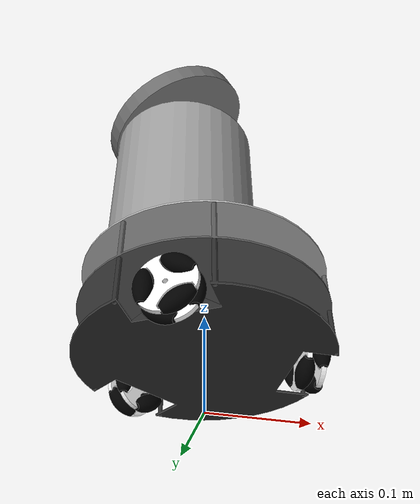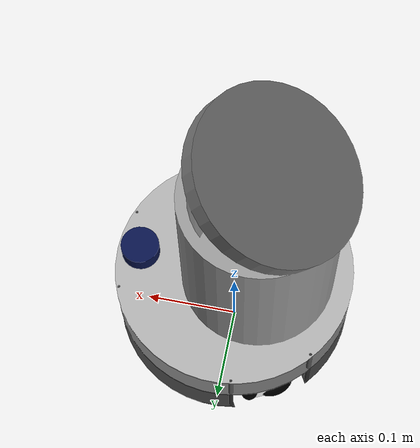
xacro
<?xml version="1.0"?>
<robot name="smartbin_robot" xmlns:xacro="http://ros.org/wiki/xacro">

  <!-- 1. Include the physical body and wheels -->
  <xacro:include filename="$(find smartbin_robot)/urdf/base_link.urdf.xacro" />

  <!-- 2. Include the motors and plugins (cmd_vel logic) -->
  <xacro:include filename="$(find smartbin_robot)/urdf/gazebo_plugins.urdf.xacro" />
  <xacro:include filename="$(find smartbin_robot)/urdf/ros2_control.urdf.xacro" />

  <!-- 3. Include the Sensors (Lidar, Camera, IMU) -->
  <xacro:include filename="$(find smartbin_robot)/urdf/lidar.urdf.xacro" />
  <xacro:include filename="$(find smartbin_robot)/urdf/camera.urdf.xacro" />
  <xacro:include filename="$(find smartbin_robot)/urdf/imu.urdf.xacro" />

  <!-- 4. Initialize the robot structure -->
  <link name="base_footprint" />

  <xacro:base_link parent="base_footprint" xyz="0 0 0.0500" rpy="0 0 0" />

</robot>

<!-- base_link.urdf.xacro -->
<robot xmlns:xacro="http://ros.org/wiki/xacro">

  <!-- Include the wheel definition -->
  <xacro:include filename="$(find smartbin_robot)/urdf/omni_wheel.urdf.xacro"/>

  <xacro:macro name="base_link" params="parent xyz rpy">
    <link name="base_link">
      <visual>
        <geometry>
          <mesh filename="package://smartbin_robot/meshes/base_link.dae" />
        </geometry>
      </visual>
      <collision>
        <geometry>
          <mesh filename="package://smartbin_robot/meshes/base_link.stl" />
        </geometry>
      </collision>
      <inertial>
        <mass value="3.0" />
        <inertia
          ixx="0.02" ixy="0.0" ixz="0.0"
          iyy="0.02" iyz="0.0"
          izz="0.04"/>
      </inertial>
    </link>

    <joint name="base_joint" type="fixed">
      <parent link="${parent}" />
      <child link="base_link" />
      <origin xyz="${xyz}" rpy="${rpy}" />
    </joint>

    <!-- Trash Can Link -->
    <link name="trashcan_link">
      <visual>
      <origin xyz="0 0 -0.15" rpy="1.5708 0 1.5708" />
        <geometry>
          <mesh filename="package://smartbin_robot/meshes/Rubbish_Bin_By_Berken.dae" scale="0.13 0.13 0.13"/>
        </geometry>
      </visual>
      <inertial>
        <mass value="1.0" />
        <inertia ixx="0.02" ixy="0.0" ixz="0.0" iyy="0.02" iyz="0.0" izz="0.01"/>
      </inertial>
    </link>

    <joint name="trashcan_joint" type="fixed">
      <parent link="base_link"/>
      <child link="trashcan_link"/>
      <origin xyz="-0.025 0 0.24" rpy="0 0 0"/>
    </joint>

    <!-- Omni Wheels -->
    <xacro:omni_wheel parent="base_link" suffix="1" xyz="0.0927 0.0000 0.0145" rpy="-0.8040 1.5708 -0.8040"/>
    <xacro:omni_wheel parent="base_link" suffix="2" xyz="-0.0464 0.0803 0.0145" rpy="-0.8040 1.5708 1.290"/>
    <xacro:omni_wheel parent="base_link" suffix="3" xyz="-0.0464 -0.0803 0.0145" rpy="-0.8040 1.5708 -2.8984"/>

    <!-- Sensors -->
    <xacro:camera parent="base_link" suffix="1" xyz="0.1035 -0.0000 0.0630" rpy="0 0 0"/>
    <xacro:lidar parent="base_link" suffix="1" xyz="0.1000 0.0000 0.1000" rpy="0 0 0"/>
    <xacro:imu parent="base_link" suffix="1" xyz="0 0 0" rpy="0 0 0"/>
  </xacro:macro>
</robot>

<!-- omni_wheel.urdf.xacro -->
<robot xmlns:xacro="http://ros.org/wiki/xacro">
  <xacro:include filename="$(find smartbin_robot)/urdf/roller.urdf.xacro"/>

  <xacro:macro name="omni_wheel" params="suffix parent xyz rpy">
    <link name="omni_wheel_link_${suffix}">
      <visual>
        <geometry>
          <mesh filename="package://smartbin_robot/meshes/omni_frame.stl" />
        </geometry>
        <material name="white">
          <color rgba="1 1 1 1" />
        </material>
      </visual>
      <collision>
        <origin xyz="0 0 0" rpy="0 0 0"/>
        <geometry>
          <cylinder radius="0.03" length="0.015"/>
        </geometry>
      </collision>
      <inertial>
        <mass value="0.5" />
        <inertia ixx="0.005" ixy="0" ixz="0" iyy="0.005" iyz="0" izz="0.005" />
      </inertial>
    </link>

    <joint name="omni_wheel_joint_${suffix}" type="continuous">
      <parent link="${parent}" />
      <child link="omni_wheel_link_${suffix}" />
      <origin xyz="${xyz}" rpy="${rpy}" />
      <axis xyz="0 0 -1"/>
    </joint>

    <!-- Roller attachments: These define the physical rollers on the wheel hub -->
    <xacro:roller parent="omni_wheel_link_${suffix}" suffix="${suffix}1" xyz="0.0000 -0.0210 0.0175" rpy="-1.570796327 -0.000000000 -1.570796327"/>
    <xacro:roller parent="omni_wheel_link_${suffix}" suffix="${suffix}2" xyz="0.0182 0.0105 0.01755" rpy="-1.570796327 0.000000000 0.523598776"/>
    <xacro:roller parent="omni_wheel_link_${suffix}" suffix="${suffix}3" xyz="-0.0182 0.0105 0.0175" rpy="-1.570796327 -0.000000000 2.617993878"/>
    <xacro:roller parent="omni_wheel_link_${suffix}" suffix="${suffix}4" xyz="-0.0182 -0.0105 0.0025" rpy="-1.570796327 -0.000000000 -2.617993878"/>
    <xacro:roller parent="omni_wheel_link_${suffix}" suffix="${suffix}5" xyz="0.0182 -0.0105 0.0025" rpy="-1.570796327 -0.000000000 -0.523598776"/>
    <xacro:roller parent="omni_wheel_link_${suffix}" suffix="${suffix}6" xyz="-0.0000 0.0210 0.0025" rpy="1.570796327 0.000000000 -1.570796327"/>
  </xacro:macro>
</robot>

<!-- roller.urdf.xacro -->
<robot xmlns:xacro="http://ros.org/wiki/xacro">
  <xacro:macro name="roller" params="suffix parent xyz rpy">
    <link name="roller_link_${suffix}">
      <visual>
        <geometry>
          <mesh filename="package://smartbin_robot/meshes/roller.stl" />
        </geometry>
        <material name="black">
          <color rgba="0 0 0 1" />
        </material>
      </visual>
      <collision>
        <geometry>
          <mesh filename="package://smartbin_robot/meshes/roller.stl" />
        </geometry>
      </collision>
      <inertial>
        <mass value="0.009" />
        <inertia ixx="1e-6" ixy="0" ixz="0" iyy="1e-6" iyz="0" izz="1e-6" />
      </inertial>
    </link>

    <joint name="roller_joint_${suffix}" type="continuous">
      <parent link="${parent}" />
      <child link="roller_link_${suffix}" />
      <origin xyz="${xyz}" rpy="${rpy}" />
      <axis xyz="0 0 1" />
    </joint>

    <gazebo reference="roller_link_${suffix}">
      <selfCollide>true</selfCollide>
      <collision>
        <surface>
          <friction>
            <ode>
              <mu>1.0</mu>
              <mu2>1.0</mu2>
            </ode>
          </friction>
        </surface>
      </collision>
    </gazebo>
  </xacro:macro>
</robot>

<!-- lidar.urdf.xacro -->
<robot xmlns:xacro="http://ros.org/wiki/xacro">
  <xacro:macro name="lidar" params="suffix parent xyz rpy">
    <link name="lidar_link_${suffix}">
      <visual>
        <geometry>
          <cylinder radius="0.02" length="0.02" />
        </geometry>
        <material name="blue">
          <color rgba="0.03 0.075 0.3 1" />
        </material>
      </visual>
    </link>

    <joint name="lidar_joint_${suffix}" type="fixed">
      <parent link="${parent}" />
      <child link="lidar_link_${suffix}" />
      <origin xyz="${xyz}" rpy="${rpy}" />
      <axis xyz="0 0 1" />
    </joint>

     <gazebo reference="lidar_link_${suffix}">
      <sensor name='gpu_lidar' type='gpu_lidar'>
        <topic>/scan</topic>
        <update_rate>10</update_rate> <!-- Increased update rate -->
        <gz_frame_id>lidar_link_${suffix}</gz_frame_id>
        <ray>
          <scan>
            <horizontal>
              <samples>180</samples>
              <resolution>1</resolution>
              <!-- Range: -pi/2 (-90 deg, right side) to +pi/2 (+90 deg, left side) -->
              <min_angle>-1.5707963</min_angle>
              <max_angle>1.5707963</max_angle>
            </horizontal>
          </scan>
          <range>
            <min>0.08</min>
            <max>10.0</max>
            <resolution>0.01</resolution>
          </range>
          <noise>
            <type>gaussian</type>
            <mean>0.0</mean>
            <stddev>0.01</stddev>
          </noise>
        </ray>
        <always_on>true</always_on>
        <visualize>true</visualize> <!-- Makes the blue laser rays visible in Gazebo! -->
      </sensor>
    </gazebo>
  </xacro:macro>
</robot>

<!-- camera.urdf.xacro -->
<robot xmlns:xacro="http://ros.org/wiki/xacro">
  <xacro:macro name="camera" params="suffix parent xyz rpy">
    <link name="camera_link_${suffix}">
      <visual>
        <geometry>
          <mesh filename="package://smartbin_robot/meshes/camera.stl" />
        </geometry>
        <material name="black">
          <color rgba="0 0 0 1" />
        </material>
      </visual>
      <collision>
        <geometry>
          <mesh filename="package://smartbin_robot/meshes/camera.stl" />
        </geometry>
      </collision>
      <inertial>
        <mass value="0.5" />
        <inertia ixx="0.005" ixy="0" ixz="0" iyy="0.005" iyz="0" izz="0.005" />
      </inertial>
    </link>

    <joint name="camera_joint_${suffix}" type="fixed">
      <parent link="${parent}" />
      <child link="camera_link_${suffix}" />
      <origin xyz="${xyz}" rpy="${rpy}" />
      <axis xyz="0 0 1"/>
    </joint>

    <gazebo reference="camera_link_${suffix}">
      <!-- Depth Sensor -->
      <sensor type="depth" name="depth_camera_${suffix}">
        <gz_frame_id>camera_link_${suffix}</gz_frame_id>
        <pose>-0.005 0 0 0 0 0</pose>
        <topic>depth</topic>
        <update_rate>10.0</update_rate>
        <camera name="depth_camera_internal_${suffix}">
          <camera_info_topic>depth/camera_info</camera_info_topic>
          <pose>0 0 0 0 0 0</pose>
          <horizontal_fov>1.5</horizontal_fov>
          <image>
            <width>320</width>
            <height>240</height>
          </image>
          <clip>
            <near>0.05</near>
            <far>300</far>
          </clip>
          <noise>
            <type>gaussian</type>
            <mean>0.0</mean>
            <stddev>0.007</stddev>
          </noise>
        </camera>
      </sensor>

      <!-- Standard RGB Sensor -->
      <sensor name="camera_${suffix}" type="camera">
        <gz_frame_id>camera_link_${suffix}</gz_frame_id>
        <pose>-0.005 0 0 0 0 0</pose>
        <always_on>1</always_on>
        <update_rate>30</update_rate>
        <visualize>true</visualize>
        <topic>camera</topic>
        <camera>
          <camera_info_topic>/camera_info</camera_info_topic>
          <horizontal_fov>1.5</horizontal_fov>
          <image>
            <width>640</width>
            <height>480</height>
          </image>
          <clip>
            <near>0.01</near>
            <far>300</far>
          </clip>
        </camera>
      </sensor>
    </gazebo>
  </xacro:macro>
</robot>

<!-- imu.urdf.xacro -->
<robot name="smartbin_robot" xmlns:xacro="http://ros.org/wiki/xacro">
  <xacro:macro name="imu" params="suffix parent xyz rpy">
    <joint name="imu_joint_${suffix}" type="fixed">
      <parent link="${parent}" />
      <child link="imu_link_${suffix}" />
      <origin xyz="${xyz}" rpy="${rpy}" />
    </joint>

    <link name="imu_link_${suffix}">
      <inertial>
        <origin xyz="0 0 0" />
        <mass value="0.005" />
        <inertia ixx="1.67e-8" ixy="0" ixz="0" iyy="1.67e-8" iyz="0" izz="1.67e-8" />
      </inertial>
    </link>

    <gazebo reference="imu_link_${suffix}">
      <sensor type="imu" name="imu_sensor">
        <!-- This is the ROS 2 topic the orientation data will flow through -->
        <topic>/imu</topic>
        <update_rate>50</update_rate>
        <always_on>1</always_on>
        <visualize>1</visualize>
      </sensor>
    </gazebo>
  </xacro:macro>
</robot>
